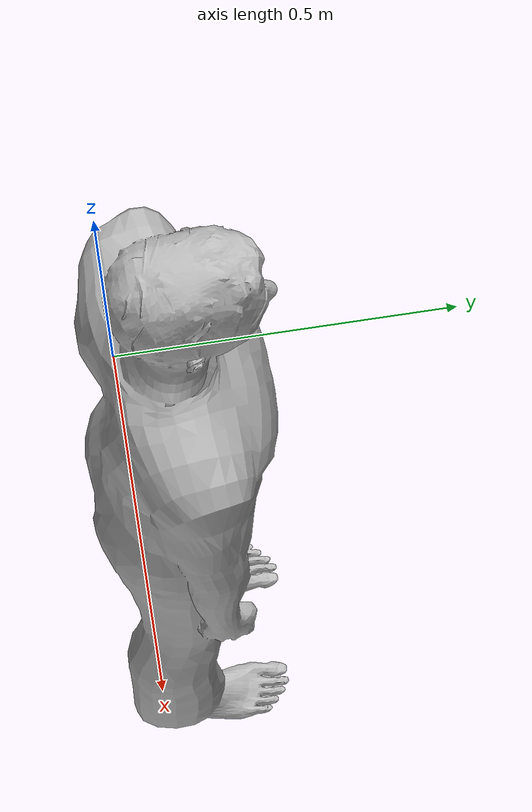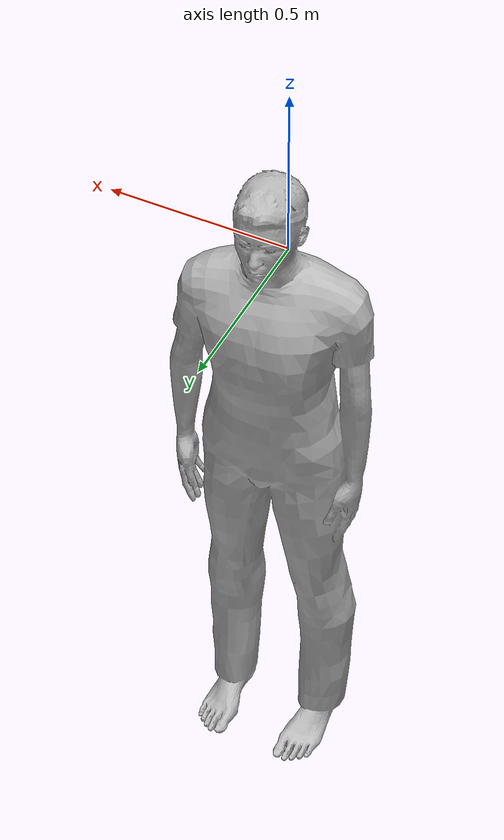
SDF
<?xml version="1.0" ?>
<sdf version="1.5">
  <model name="person_standing">
    <link name="link">
      <inertial>
        <mass>20.0</mass>
        <inertia>
          <ixx>1.0</ixx>
          <ixy>0</ixy>
          <ixz>0</ixz>
          <iyy>1.0</iyy>
          <iyz>0</iyz>
          <izz>0.1</izz>
        </inertia>
      </inertial>
      <collision name="bottom">
        <pose>0 0 0.01 0 0 0</pose>
        <geometry>
          <box>
            <size>0.35 0.75 0.02</size>
          </box>
        </geometry>
      </collision>
      <collision name="person">
        <pose>0 0 0.02 0.04 0 0</pose>
        <geometry>
          <mesh>
            <uri>model://person_standing/meshes/standing.dae</uri>
          </mesh>
        </geometry>
      </collision>
      <visual name="visual">
        <pose>0 0 -1.6 0.04 0 -3.14</pose>
        <geometry>
          <mesh>
            <uri>model://person_standing/meshes/standing.dae</uri>
          </mesh>
        </geometry>
      </visual>
    </link>
    <plugin name="BuoyancyPlugin" filename="libbuoyancy_gazebo_plugin.so">
      <wave_model>ocean_waves</wave_model>
      <fluid_density>1000</fluid_density>
      <fluid_level>0.0</fluid_level>
      <linear_drag>25.0</linear_drag>
      <angular_drag>2.0</angular_drag>
      <buoyancy name="buoyancy_sphere">
        <link_name>link</link_name>
        <pose>0 0 -0.02 0 0 0</pose>
        <geometry>
          <sphere>
            <radius>0.235</radius>
          </sphere>
        </geometry>
      </buoyancy>
    </plugin>
  </model>
</sdf>
